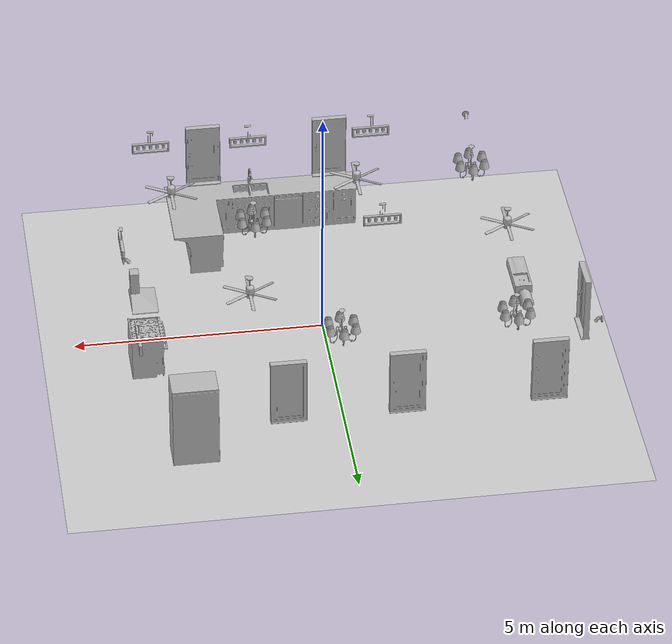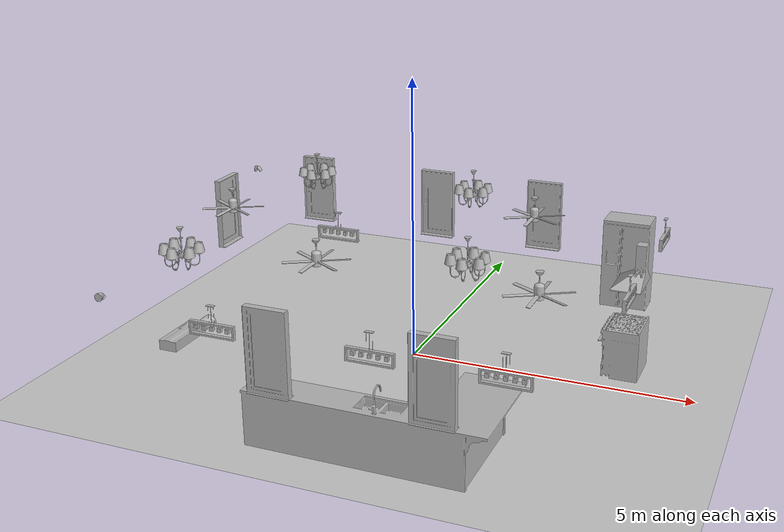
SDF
<sdf version="1.4">
 <world name="default">
  <light name="sun" type="directional">
   <pose>0 0 10 0 -0 0</pose>
   <diffuse>0.8 0.8 0.8 1</diffuse>
   <specular>0.2 0.2 0.2 1</specular>
   <attenuation>
    <range>1000</range>
    <constant>0.9</constant>
    <linear>0.01</linear>
    <quadratic>0.001</quadratic>
   </attenuation>
   <direction>-0.5 0.1 -0.9</direction>
  </light>
  <model name="ground_plane">
   <static>1</static>
   <link name="link">
    <collision name="collision">
     <geometry><plane><normal>0 0 1</normal><size>100 100</size></plane></geometry>
     <surface><friction><ode><mu>100</mu><mu2>50</mu2></ode></friction></surface>
    </collision>
    <visual name="visual">
     <cast_shadows>0</cast_shadows>
     <geometry><plane><normal>0 0 1</normal><size>100 100</size></plane></geometry>
     <material>
      <script><uri>file://media/materials/scripts/gazebo.material</uri><name>Gazebo/Grey</name></script>
     </material>
    </visual>
    <velocity_decay><linear>0</linear><angular>0</angular></velocity_decay>
   </link>
  </model>
  <physics type="ode">
   <max_step_size>0.001</max_step_size>
   <real_time_factor>1</real_time_factor>
   <real_time_update_rate>1000</real_time_update_rate>
   <gravity>0 0 -9.8</gravity>
  </physics>
  <scene><ambient>0.4 0.4 0.4 1</ambient><background>0.7 0.7 0.7 1</background><shadows>1</shadows></scene>
  <spherical_coordinates>
   <surface_model>EARTH_WGS84</surface_model>
   <latitude_deg>0</latitude_deg>
   <longitude_deg>0</longitude_deg>
   <elevation>0</elevation>
   <heading_deg>0</heading_deg>
  </spherical_coordinates>
  <model name="s__1051_0">
   <pose>0.773722 -2.98849 0 0 -0 1.5708</pose>
   <static>1</static>
   <link name="link">
    <collision name="collision"><geometry><box><size>1.82 3.92 2</size></box></geometry></collision>
    <visual name="visual"><geometry><mesh><uri>model://s__1051/s__1051.dae</uri></mesh></geometry></visual>
    <velocity_decay><linear>0</linear><angular>0</angular></velocity_decay>
   </link>
  </model>
  <model name="131_0">
   <pose>3.00572 3.67533 0 0 0 -1.5708</pose>
   <static>1</static>
   <link name="link">
    <collision name="collision"><geometry><box><size>0.62087 0.9 2</size></box></geometry></collision>
    <visual name="visual"><geometry><mesh><uri>model://131/131.dae</uri></mesh></geometry></visual>
    <velocity_decay><linear>0</linear><angular>0</angular></velocity_decay>
   </link>
  </model>
  <model name="s__1058_0">
   <pose>3.58972 0.772889 0 0 -0 3.14159</pose>
   <static>1</static>
   <link name="link">
    <collision name="collision"><geometry><box><size>0.709996 0.8 2</size></box></geometry></collision>
    <visual name="visual"><geometry><mesh><uri>model://s__1058/s__1058.dae</uri></mesh></geometry></visual>
    <velocity_decay><linear>0</linear><angular>0</angular></velocity_decay>
   </link>
  </model>
  <model name="s__1060_0">
   <pose>3.65181 0.784891 1.60088 0 -0 3.14159</pose>
   <static>1</static>
   <link name="link">
    <collision name="collision"><geometry><box><size>0.520031 0.8 2</size></box></geometry></collision>
    <visual name="visual"><geometry><mesh><uri>model://s__1060/s__1060.dae</uri></mesh></geometry></visual>
    <velocity_decay><linear>0</linear><angular>0</angular></velocity_decay>
   </link>
  </model>
  <model name="206_0">
   <pose>-4.20091 -1.49511 0 0 -0 0</pose>
   <static>1</static>
   <link name="link">
    <collision name="collision"><geometry><box><size>0.36 0.35 2</size></box></geometry></collision>
    <visual name="visual"><geometry><mesh><uri>model://206/206.dae</uri></mesh></geometry></visual>
    <velocity_decay><linear>0</linear><angular>0</angular></velocity_decay>
   </link>
  </model>
  <model name="650_0">
   <pose>-0.942281 -1.78311 2.19 0 -0 0</pose>
   <static>1</static>
   <link name="link">
    <collision name="collision"><geometry><box><size>0.99975 1.12 2</size></box></geometry></collision>
    <visual name="visual"><geometry><mesh><uri>model://650/650.dae</uri></mesh></geometry></visual>
    <velocity_decay><linear>0</linear><angular>0</angular></velocity_decay>
   </link>
  </model>
  <model name="650_1">
   <pose>2.80172 -1.80711 2.19 0 -0 0</pose>
   <static>1</static>
   <link name="link">
    <collision name="collision"><geometry><box><size>0.99975 1.12 2</size></box></geometry></collision>
    <visual name="visual"><geometry><mesh><uri>model://650/650.dae</uri></mesh></geometry></visual>
    <velocity_decay><linear>0</linear><angular>0</angular></velocity_decay>
   </link>
  </model>
  <model name="650_2">
   <pose>1.66172 1.69689 2.19 0 -0 0</pose>
   <static>1</static>
   <link name="link">
    <collision name="collision"><geometry><box><size>0.99975 1.12 2</size></box></geometry></collision>
    <visual name="visual"><geometry><mesh><uri>model://650/650.dae</uri></mesh></geometry></visual>
    <velocity_decay><linear>0</linear><angular>0</angular></velocity_decay>
   </link>
  </model>
  <model name="650_3">
   <pose>-3.67828 0.148888 2.19 0 -0 0</pose>
   <static>1</static>
   <link name="link">
    <collision name="collision"><geometry><box><size>0.99975 1.12 2</size></box></geometry></collision>
    <visual name="visual"><geometry><mesh><uri>model://650/650.dae</uri></mesh></geometry></visual>
    <velocity_decay><linear>0</linear><angular>0</angular></velocity_decay>
   </link>
  </model>
  <model name="633_0">
   <pose>-1.56228 -3.95193 1.7564 0 0 -1.5708</pose>
   <static>1</static>
   <link name="link">
    <collision name="collision"><geometry><box><size>0.06 0.76 2</size></box></geometry></collision>
    <visual name="visual"><geometry><mesh><uri>model://633/633.dae</uri></mesh></geometry></visual>
    <velocity_decay><linear>0</linear><angular>0</angular></velocity_decay>
   </link>
  </model>
  <model name="633_1">
   <pose>2.99372 -3.94671 1.79175 0 0 -1.5708</pose>
   <static>1</static>
   <link name="link">
    <collision name="collision"><geometry><box><size>0.06 0.76 2</size></box></geometry></collision>
    <visual name="visual"><geometry><mesh><uri>model://633/633.dae</uri></mesh></geometry></visual>
    <velocity_decay><linear>0</linear><angular>0</angular></velocity_decay>
   </link>
  </model>
  <model name="633_2">
   <pose>0.989718 -3.93336 1.7597 0 0 -1.5708</pose>
   <static>1</static>
   <link name="link">
    <collision name="collision"><geometry><box><size>0.06 0.76 2</size></box></geometry></collision>
    <visual name="visual"><geometry><mesh><uri>model://633/633.dae</uri></mesh></geometry></visual>
    <velocity_decay><linear>0</linear><angular>0</angular></velocity_decay>
   </link>
  </model>
  <model name="633_3">
   <pose>3.9327 -0.65511 1.83445 0 -0 0</pose>
   <static>1</static>
   <link name="link">
    <collision name="collision"><geometry><box><size>0.06 0.76 2</size></box></geometry></collision>
    <visual name="visual"><geometry><mesh><uri>model://633/633.dae</uri></mesh></geometry></visual>
    <velocity_decay><linear>0</linear><angular>0</angular></velocity_decay>
   </link>
  </model>
  <model name="633_4">
   <pose>3.91093 2.38089 1.80618 0 -0 0</pose>
   <static>1</static>
   <link name="link">
    <collision name="collision"><geometry><box><size>0.06 0.76 2</size></box></geometry></collision>
    <visual name="visual"><geometry><mesh><uri>model://633/633.dae</uri></mesh></geometry></visual>
    <velocity_decay><linear>0</linear><angular>0</angular></velocity_decay>
   </link>
  </model>
  <model name="633_5">
   <pose>-1.25428 -0.367108 2.14 0 0 -1.5708</pose>
   <static>1</static>
   <link name="link">
    <collision name="collision"><geometry><box><size>0.06 0.76 2</size></box></geometry></collision>
    <visual name="visual"><geometry><mesh><uri>model://633/633.dae</uri></mesh></geometry></visual>
    <velocity_decay><linear>0</linear><angular>0</angular></velocity_decay>
   </link>
  </model>
  <model name="626_0">
   <pose>1.27772 -0.751112 1.94 0 -0 0</pose>
   <static>1</static>
   <link name="link">
    <collision name="collision"><geometry><box><size>0.69 0.769564 2</size></box></geometry></collision>
    <visual name="visual"><geometry><mesh><uri>model://626/626.dae</uri></mesh></geometry></visual>
    <velocity_decay><linear>0</linear><angular>0</angular></velocity_decay>
   </link>
  </model>
  <model name="626_1">
   <pose>-3.33028 -2.05911 1.94 0 -0 0</pose>
   <static>1</static>
   <link name="link">
    <collision name="collision"><geometry><box><size>0.69 0.769564 2</size></box></geometry></collision>
    <visual name="visual"><geometry><mesh><uri>model://626/626.dae</uri></mesh></geometry></visual>
    <velocity_decay><linear>0</linear><angular>0</angular></velocity_decay>
   </link>
  </model>
  <model name="626_2">
   <pose>-3.36628 2.92089 1.94 0 -0 0</pose>
   <static>1</static>
   <link name="link">
    <collision name="collision"><geometry><box><size>0.69 0.769564 2</size></box></geometry></collision>
    <visual name="visual"><geometry><mesh><uri>model://626/626.dae</uri></mesh></geometry></visual>
    <velocity_decay><linear>0</linear><angular>0</angular></velocity_decay>
   </link>
  </model>
  <model name="626_3">
   <pose>0.041719 2.94489 1.94 0 -0 0</pose>
   <static>1</static>
   <link name="link">
    <collision name="collision"><geometry><box><size>0.69 0.769564 2</size></box></geometry></collision>
    <visual name="visual"><geometry><mesh><uri>model://626/626.dae</uri></mesh></geometry></visual>
    <velocity_decay><linear>0</linear><angular>0</angular></velocity_decay>
   </link>
  </model>
  <model name="213_0">
   <pose>1.92572 -3.89743 0.948716 0 -0 1.5708</pose>
   <static>1</static>
   <link name="link">
    <collision name="collision"><geometry><box><size>0.175 0.7 2</size></box></geometry></collision>
    <visual name="visual"><geometry><mesh><uri>model://213/213.dae</uri></mesh></geometry></visual>
    <velocity_decay><linear>0</linear><angular>0</angular></velocity_decay>
   </link>
  </model>
  <model name="213_1">
   <pose>-0.685318 -3.89399 0.932342 0 -0 1.5708</pose>
   <static>1</static>
   <link name="link">
    <collision name="collision"><geometry><box><size>0.175 0.7 2</size></box></geometry></collision>
    <visual name="visual"><geometry><mesh><uri>model://213/213.dae</uri></mesh></geometry></visual>
    <velocity_decay><linear>0</linear><angular>0</angular></velocity_decay>
   </link>
  </model>
  <model name="213_2">
   <pose>1.21399 3.93655 0.865247 0 0 -1.5708</pose>
   <static>1</static>
   <link name="link">
    <collision name="collision"><geometry><box><size>0.175 0.7 2</size></box></geometry></collision>
    <visual name="visual"><geometry><mesh><uri>model://213/213.dae</uri></mesh></geometry></visual>
    <velocity_decay><linear>0</linear><angular>0</angular></velocity_decay>
   </link>
  </model>
  <model name="213_3">
   <pose>-3.85911 3.9289 0.867323 0 0 -1.5708</pose>
   <static>1</static>
   <link name="link">
    <collision name="collision"><geometry><box><size>0.175 0.7 2</size></box></geometry></collision>
    <visual name="visual"><geometry><mesh><uri>model://213/213.dae</uri></mesh></geometry></visual>
    <velocity_decay><linear>0</linear><angular>0</angular></velocity_decay>
   </link>
  </model>
  <model name="213_4">
   <pose>-1.09083 3.92128 0.851889 0 0 -1.5708</pose>
   <static>1</static>
   <link name="link">
    <collision name="collision"><geometry><box><size>0.175 0.7 2</size></box></geometry></collision>
    <visual name="visual"><geometry><mesh><uri>model://213/213.dae</uri></mesh></geometry></visual>
    <velocity_decay><linear>0</linear><angular>0</angular></velocity_decay>
   </link>
  </model>
  <model name="213_5">
   <pose>-4.91572 1.89593 0.858217 0 -0 0</pose>
   <static>1</static>
   <link name="link">
    <collision name="collision"><geometry><box><size>0.175 0.7 2</size></box></geometry></collision>
    <visual name="visual"><geometry><mesh><uri>model://213/213.dae</uri></mesh></geometry></visual>
    <velocity_decay><linear>0</linear><angular>0</angular></velocity_decay>
   </link>
  </model>
  <model name="176_0">
   <pose>-3.54628 -3.91387 2.02 0 -0 1.5708</pose>
   <static>1</static>
   <link name="link">
    <collision name="collision"><geometry><box><size>0.157536 0.135311 2</size></box></geometry></collision>
    <visual name="visual"><geometry><mesh><uri>model://176/176.dae</uri></mesh></geometry></visual>
    <velocity_decay><linear>0</linear><angular>0</angular></velocity_decay>
   </link>
  </model>
  <model name="176_1">
   <pose>-4.92313 3.19689 2.02 0 -0 0</pose>
   <static>1</static>
   <link name="link">
    <collision name="collision"><geometry><box><size>0.157536 0.135311 2</size></box></geometry></collision>
    <visual name="visual"><geometry><mesh><uri>model://176/176.dae</uri></mesh></geometry></visual>
    <velocity_decay><linear>0</linear><angular>0</angular></velocity_decay>
   </link>
  </model>
  <model name="176_2">
   <pose>3.89769 0.076891 2.02 0 -0 3.14159</pose>
   <static>1</static>
   <link name="link">
    <collision name="collision"><geometry><box><size>0.157536 0.135311 2</size></box></geometry></collision>
    <visual name="visual"><geometry><mesh><uri>model://176/176.dae</uri></mesh></geometry></visual>
    <velocity_decay><linear>0</linear><angular>0</angular></velocity_decay>
   </link>
  </model>
 </world>
</sdf>
